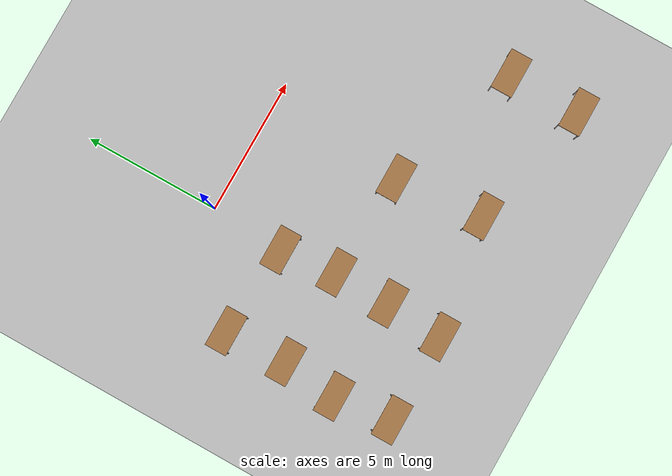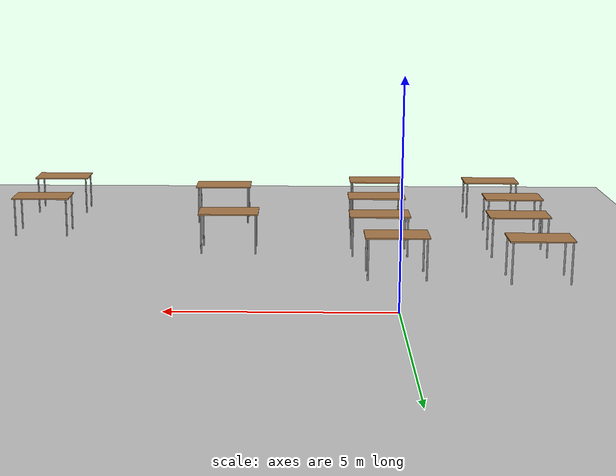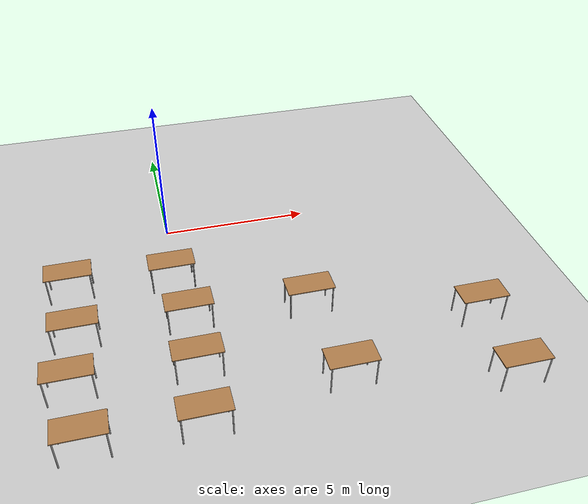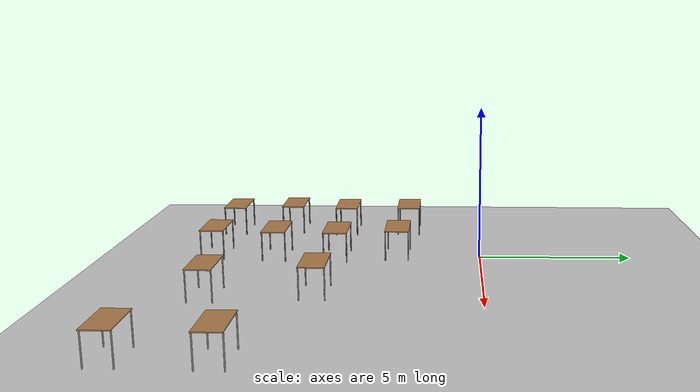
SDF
<sdf version="1.6">
 <world name="default">
  <model name="ground_plane">
   <static>1</static>
   <link name="link">
    <collision name="collision">
     <geometry><plane><normal>0 0 1</normal><size>100 100</size></plane></geometry>
     <surface>
      <contact><collide_bitmask>65535</collide_bitmask></contact>
      <friction><ode><mu>100</mu><mu2>50</mu2></ode></friction>
     </surface>
    </collision>
    <visual name="visual">
     <cast_shadows>0</cast_shadows>
     <geometry><plane><normal>0 0 1</normal><size>100 100</size></plane></geometry>
     <material>
      <script><uri>file://media/materials/scripts/gazebo.material</uri><name>Gazebo/Grey</name></script>
     </material>
    </visual>
   </link>
  </model>
  <model name="table">
   <static>1</static>
   <link name="link">
    <collision name="surface">
     <pose>0 0 1 0 -0 0</pose>
     <geometry><box><size>1.5 0.8 0.03</size></box></geometry>
     <surface><friction><ode><mu>0.6</mu><mu2>0.6</mu2></ode></friction></surface>
    </collision>
    <visual name="visual1">
     <pose>0 0 1 0 -0 0</pose>
     <geometry><box><size>1.5 0.8 0.03</size></box></geometry>
     <material>
      <script><uri>file://media/materials/scripts/gazebo.material</uri><name>Gazebo/Wood</name></script>
     </material>
    </visual>
    <collision name="front_left_leg">
     <pose>0.68 0.38 0.5 0 -0 0</pose>
     <geometry><cylinder><radius>0.02</radius><length>1</length></cylinder></geometry>
    </collision>
    <visual name="front_left_leg">
     <pose>0.68 0.38 0.5 0 -0 0</pose>
     <geometry><cylinder><radius>0.02</radius><length>1</length></cylinder></geometry>
     <material>
      <script><uri>file://media/materials/scripts/gazebo.material</uri><name>Gazebo/Grey</name></script>
     </material>
    </visual>
    <collision name="front_right_leg">
     <pose>0.68 -0.38 0.5 0 -0 0</pose>
     <geometry><cylinder><radius>0.02</radius><length>1</length></cylinder></geometry>
    </collision>
    <visual name="front_right_leg">
     <pose>0.68 -0.38 0.5 0 -0 0</pose>
     <geometry><cylinder><radius>0.02</radius><length>1</length></cylinder></geometry>
     <material>
      <script><uri>file://media/materials/scripts/gazebo.material</uri><name>Gazebo/Grey</name></script>
     </material>
    </visual>
    <collision name="back_right_leg">
     <pose>-0.68 -0.38 0.5 0 -0 0</pose>
     <geometry><cylinder><radius>0.02</radius><length>1</length></cylinder></geometry>
    </collision>
    <visual name="back_right_leg">
     <pose>-0.68 -0.38 0.5 0 -0 0</pose>
     <geometry><cylinder><radius>0.02</radius><length>1</length></cylinder></geometry>
     <material>
      <script><uri>file://media/materials/scripts/gazebo.material</uri><name>Gazebo/Grey</name></script>
     </material>
    </visual>
    <collision name="back_left_leg">
     <pose>-0.68 0.38 0.5 0 -0 0</pose>
     <geometry><cylinder><radius>0.02</radius><length>1</length></cylinder></geometry>
    </collision>
    <visual name="back_left_leg">
     <pose>-0.68 0.38 0.5 0 -0 0</pose>
     <geometry><cylinder><radius>0.02</radius><length>1</length></cylinder></geometry>
     <material>
      <script><uri>file://media/materials/scripts/gazebo.material</uri><name>Gazebo/Grey</name></script>
     </material>
    </visual>
   </link>
   <pose>4.21353 -8.15527 0 0 -0 0</pose>
  </model>
  <model name="table_0">
   <static>1</static>
   <link name="link">
    <collision name="surface">
     <pose>0 0 1 0 -0 0</pose>
     <geometry><box><size>1.5 0.8 0.03</size></box></geometry>
     <surface><friction><ode><mu>0.6</mu><mu2>0.6</mu2></ode></friction></surface>
    </collision>
    <visual name="visual1">
     <pose>0 0 1 0 -0 0</pose>
     <geometry><box><size>1.5 0.8 0.03</size></box></geometry>
     <material>
      <script><uri>file://media/materials/scripts/gazebo.material</uri><name>Gazebo/Wood</name></script>
     </material>
    </visual>
    <collision name="front_left_leg">
     <pose>0.68 0.38 0.5 0 -0 0</pose>
     <geometry><cylinder><radius>0.02</radius><length>1</length></cylinder></geometry>
    </collision>
    <visual name="front_left_leg">
     <pose>0.68 0.38 0.5 0 -0 0</pose>
     <geometry><cylinder><radius>0.02</radius><length>1</length></cylinder></geometry>
     <material>
      <script><uri>file://media/materials/scripts/gazebo.material</uri><name>Gazebo/Grey</name></script>
     </material>
    </visual>
    <collision name="front_right_leg">
     <pose>0.68 -0.38 0.5 0 -0 0</pose>
     <geometry><cylinder><radius>0.02</radius><length>1</length></cylinder></geometry>
    </collision>
    <visual name="front_right_leg">
     <pose>0.68 -0.38 0.5 0 -0 0</pose>
     <geometry><cylinder><radius>0.02</radius><length>1</length></cylinder></geometry>
     <material>
      <script><uri>file://media/materials/scripts/gazebo.material</uri><name>Gazebo/Grey</name></script>
     </material>
    </visual>
    <collision name="back_right_leg">
     <pose>-0.68 -0.38 0.5 0 -0 0</pose>
     <geometry><cylinder><radius>0.02</radius><length>1</length></cylinder></geometry>
    </collision>
    <visual name="back_right_leg">
     <pose>-0.68 -0.38 0.5 0 -0 0</pose>
     <geometry><cylinder><radius>0.02</radius><length>1</length></cylinder></geometry>
     <material>
      <script><uri>file://media/materials/scripts/gazebo.material</uri><name>Gazebo/Grey</name></script>
     </material>
    </visual>
    <collision name="back_left_leg">
     <pose>-0.68 0.38 0.5 0 -0 0</pose>
     <geometry><cylinder><radius>0.02</radius><length>1</length></cylinder></geometry>
    </collision>
    <visual name="back_left_leg">
     <pose>-0.68 0.38 0.5 0 -0 0</pose>
     <geometry><cylinder><radius>0.02</radius><length>1</length></cylinder></geometry>
     <material>
      <script><uri>file://media/materials/scripts/gazebo.material</uri><name>Gazebo/Grey</name></script>
     </material>
    </visual>
   </link>
   <pose>8.95701 -6.62729 0 0 -0 0</pose>
  </model>
  <model name="table_1">
   <static>1</static>
   <link name="link">
    <collision name="surface">
     <pose>0 0 1 0 -0 0</pose>
     <geometry><box><size>1.5 0.8 0.03</size></box></geometry>
     <surface><friction><ode><mu>0.6</mu><mu2>0.6</mu2></ode></friction></surface>
    </collision>
    <visual name="visual1">
     <pose>0 0 1 0 -0 0</pose>
     <geometry><box><size>1.5 0.8 0.03</size></box></geometry>
     <material>
      <script><uri>file://media/materials/scripts/gazebo.material</uri><name>Gazebo/Wood</name></script>
     </material>
    </visual>
    <collision name="front_left_leg">
     <pose>0.68 0.38 0.5 0 -0 0</pose>
     <geometry><cylinder><radius>0.02</radius><length>1</length></cylinder></geometry>
    </collision>
    <visual name="front_left_leg">
     <pose>0.68 0.38 0.5 0 -0 0</pose>
     <geometry><cylinder><radius>0.02</radius><length>1</length></cylinder></geometry>
     <material>
      <script><uri>file://media/materials/scripts/gazebo.material</uri><name>Gazebo/Grey</name></script>
     </material>
    </visual>
    <collision name="front_right_leg">
     <pose>0.68 -0.38 0.5 0 -0 0</pose>
     <geometry><cylinder><radius>0.02</radius><length>1</length></cylinder></geometry>
    </collision>
    <visual name="front_right_leg">
     <pose>0.68 -0.38 0.5 0 -0 0</pose>
     <geometry><cylinder><radius>0.02</radius><length>1</length></cylinder></geometry>
     <material>
      <script><uri>file://media/materials/scripts/gazebo.material</uri><name>Gazebo/Grey</name></script>
     </material>
    </visual>
    <collision name="back_right_leg">
     <pose>-0.68 -0.38 0.5 0 -0 0</pose>
     <geometry><cylinder><radius>0.02</radius><length>1</length></cylinder></geometry>
    </collision>
    <visual name="back_right_leg">
     <pose>-0.68 -0.38 0.5 0 -0 0</pose>
     <geometry><cylinder><radius>0.02</radius><length>1</length></cylinder></geometry>
     <material>
      <script><uri>file://media/materials/scripts/gazebo.material</uri><name>Gazebo/Grey</name></script>
     </material>
    </visual>
    <collision name="back_left_leg">
     <pose>-0.68 0.38 0.5 0 -0 0</pose>
     <geometry><cylinder><radius>0.02</radius><length>1</length></cylinder></geometry>
    </collision>
    <visual name="back_left_leg">
     <pose>-0.68 0.38 0.5 0 -0 0</pose>
     <geometry><cylinder><radius>0.02</radius><length>1</length></cylinder></geometry>
     <material>
      <script><uri>file://media/materials/scripts/gazebo.material</uri><name>Gazebo/Grey</name></script>
     </material>
    </visual>
   </link>
   <pose>8.91556 -9.27828 0 0 -0 0</pose>
  </model>
  <model name="table_2">
   <static>1</static>
   <link name="link">
    <collision name="surface">
     <pose>0 0 1 0 -0 0</pose>
     <geometry><box><size>1.5 0.8 0.03</size></box></geometry>
     <surface><friction><ode><mu>0.6</mu><mu2>0.6</mu2></ode></friction></surface>
    </collision>
    <visual name="visual1">
     <pose>0 0 1 0 -0 0</pose>
     <geometry><box><size>1.5 0.8 0.03</size></box></geometry>
     <material>
      <script><uri>file://media/materials/scripts/gazebo.material</uri><name>Gazebo/Wood</name></script>
     </material>
    </visual>
    <collision name="front_left_leg">
     <pose>0.68 0.38 0.5 0 -0 0</pose>
     <geometry><cylinder><radius>0.02</radius><length>1</length></cylinder></geometry>
    </collision>
    <visual name="front_left_leg">
     <pose>0.68 0.38 0.5 0 -0 0</pose>
     <geometry><cylinder><radius>0.02</radius><length>1</length></cylinder></geometry>
     <material>
      <script><uri>file://media/materials/scripts/gazebo.material</uri><name>Gazebo/Grey</name></script>
     </material>
    </visual>
    <collision name="front_right_leg">
     <pose>0.68 -0.38 0.5 0 -0 0</pose>
     <geometry><cylinder><radius>0.02</radius><length>1</length></cylinder></geometry>
    </collision>
    <visual name="front_right_leg">
     <pose>0.68 -0.38 0.5 0 -0 0</pose>
     <geometry><cylinder><radius>0.02</radius><length>1</length></cylinder></geometry>
     <material>
      <script><uri>file://media/materials/scripts/gazebo.material</uri><name>Gazebo/Grey</name></script>
     </material>
    </visual>
    <collision name="back_right_leg">
     <pose>-0.68 -0.38 0.5 0 -0 0</pose>
     <geometry><cylinder><radius>0.02</radius><length>1</length></cylinder></geometry>
    </collision>
    <visual name="back_right_leg">
     <pose>-0.68 -0.38 0.5 0 -0 0</pose>
     <geometry><cylinder><radius>0.02</radius><length>1</length></cylinder></geometry>
     <material>
      <script><uri>file://media/materials/scripts/gazebo.material</uri><name>Gazebo/Grey</name></script>
     </material>
    </visual>
    <collision name="back_left_leg">
     <pose>-0.68 0.38 0.5 0 -0 0</pose>
     <geometry><cylinder><radius>0.02</radius><length>1</length></cylinder></geometry>
    </collision>
    <visual name="back_left_leg">
     <pose>-0.68 0.38 0.5 0 -0 0</pose>
     <geometry><cylinder><radius>0.02</radius><length>1</length></cylinder></geometry>
     <material>
      <script><uri>file://media/materials/scripts/gazebo.material</uri><name>Gazebo/Grey</name></script>
     </material>
    </visual>
   </link>
   <pose>-0.06769 -8.858 0 0 -0 0</pose>
  </model>
  <model name="table_3">
   <static>1</static>
   <link name="link">
    <collision name="surface">
     <pose>0 0 1 0 -0 0</pose>
     <geometry><box><size>1.5 0.8 0.03</size></box></geometry>
     <surface><friction><ode><mu>0.6</mu><mu2>0.6</mu2></ode></friction></surface>
    </collision>
    <visual name="visual1">
     <pose>0 0 1 0 -0 0</pose>
     <geometry><box><size>1.5 0.8 0.03</size></box></geometry>
     <material>
      <script><uri>file://media/materials/scripts/gazebo.material</uri><name>Gazebo/Wood</name></script>
     </material>
    </visual>
    <collision name="front_left_leg">
     <pose>0.68 0.38 0.5 0 -0 0</pose>
     <geometry><cylinder><radius>0.02</radius><length>1</length></cylinder></geometry>
    </collision>
    <visual name="front_left_leg">
     <pose>0.68 0.38 0.5 0 -0 0</pose>
     <geometry><cylinder><radius>0.02</radius><length>1</length></cylinder></geometry>
     <material>
      <script><uri>file://media/materials/scripts/gazebo.material</uri><name>Gazebo/Grey</name></script>
     </material>
    </visual>
    <collision name="front_right_leg">
     <pose>0.68 -0.38 0.5 0 -0 0</pose>
     <geometry><cylinder><radius>0.02</radius><length>1</length></cylinder></geometry>
    </collision>
    <visual name="front_right_leg">
     <pose>0.68 -0.38 0.5 0 -0 0</pose>
     <geometry><cylinder><radius>0.02</radius><length>1</length></cylinder></geometry>
     <material>
      <script><uri>file://media/materials/scripts/gazebo.material</uri><name>Gazebo/Grey</name></script>
     </material>
    </visual>
    <collision name="back_right_leg">
     <pose>-0.68 -0.38 0.5 0 -0 0</pose>
     <geometry><cylinder><radius>0.02</radius><length>1</length></cylinder></geometry>
    </collision>
    <visual name="back_right_leg">
     <pose>-0.68 -0.38 0.5 0 -0 0</pose>
     <geometry><cylinder><radius>0.02</radius><length>1</length></cylinder></geometry>
     <material>
      <script><uri>file://media/materials/scripts/gazebo.material</uri><name>Gazebo/Grey</name></script>
     </material>
    </visual>
    <collision name="back_left_leg">
     <pose>-0.68 0.38 0.5 0 -0 0</pose>
     <geometry><cylinder><radius>0.02</radius><length>1</length></cylinder></geometry>
    </collision>
    <visual name="back_left_leg">
     <pose>-0.68 0.38 0.5 0 -0 0</pose>
     <geometry><cylinder><radius>0.02</radius><length>1</length></cylinder></geometry>
     <material>
      <script><uri>file://media/materials/scripts/gazebo.material</uri><name>Gazebo/Grey</name></script>
     </material>
    </visual>
   </link>
   <pose>-3.28325 -8.80632 0 0 -0 0</pose>
  </model>
  <model name="table_4">
   <static>1</static>
   <link name="link">
    <collision name="surface">
     <pose>0 0 1 0 -0 0</pose>
     <geometry><box><size>1.5 0.8 0.03</size></box></geometry>
     <surface><friction><ode><mu>0.6</mu><mu2>0.6</mu2></ode></friction></surface>
    </collision>
    <visual name="visual1">
     <pose>0 0 1 0 -0 0</pose>
     <geometry><box><size>1.5 0.8 0.03</size></box></geometry>
     <material>
      <script><uri>file://media/materials/scripts/gazebo.material</uri><name>Gazebo/Wood</name></script>
     </material>
    </visual>
    <collision name="front_left_leg">
     <pose>0.68 0.38 0.5 0 -0 0</pose>
     <geometry><cylinder><radius>0.02</radius><length>1</length></cylinder></geometry>
    </collision>
    <visual name="front_left_leg">
     <pose>0.68 0.38 0.5 0 -0 0</pose>
     <geometry><cylinder><radius>0.02</radius><length>1</length></cylinder></geometry>
     <material>
      <script><uri>file://media/materials/scripts/gazebo.material</uri><name>Gazebo/Grey</name></script>
     </material>
    </visual>
    <collision name="front_right_leg">
     <pose>0.68 -0.38 0.5 0 -0 0</pose>
     <geometry><cylinder><radius>0.02</radius><length>1</length></cylinder></geometry>
    </collision>
    <visual name="front_right_leg">
     <pose>0.68 -0.38 0.5 0 -0 0</pose>
     <geometry><cylinder><radius>0.02</radius><length>1</length></cylinder></geometry>
     <material>
      <script><uri>file://media/materials/scripts/gazebo.material</uri><name>Gazebo/Grey</name></script>
     </material>
    </visual>
    <collision name="back_right_leg">
     <pose>-0.68 -0.38 0.5 0 -0 0</pose>
     <geometry><cylinder><radius>0.02</radius><length>1</length></cylinder></geometry>
    </collision>
    <visual name="back_right_leg">
     <pose>-0.68 -0.38 0.5 0 -0 0</pose>
     <geometry><cylinder><radius>0.02</radius><length>1</length></cylinder></geometry>
     <material>
      <script><uri>file://media/materials/scripts/gazebo.material</uri><name>Gazebo/Grey</name></script>
     </material>
    </visual>
    <collision name="back_left_leg">
     <pose>-0.68 0.38 0.5 0 -0 0</pose>
     <geometry><cylinder><radius>0.02</radius><length>1</length></cylinder></geometry>
    </collision>
    <visual name="back_left_leg">
     <pose>-0.68 0.38 0.5 0 -0 0</pose>
     <geometry><cylinder><radius>0.02</radius><length>1</length></cylinder></geometry>
     <material>
      <script><uri>file://media/materials/scripts/gazebo.material</uri><name>Gazebo/Grey</name></script>
     </material>
    </visual>
   </link>
   <pose>-3.54698 -6.73066 0 0 -0 0</pose>
  </model>
  <model name="table_5">
   <static>1</static>
   <link name="link">
    <collision name="surface">
     <pose>0 0 1 0 -0 0</pose>
     <geometry><box><size>1.5 0.8 0.03</size></box></geometry>
     <surface><friction><ode><mu>0.6</mu><mu2>0.6</mu2></ode></friction></surface>
    </collision>
    <visual name="visual1">
     <pose>0 0 1 0 -0 0</pose>
     <geometry><box><size>1.5 0.8 0.03</size></box></geometry>
     <material>
      <script><uri>file://media/materials/scripts/gazebo.material</uri><name>Gazebo/Wood</name></script>
     </material>
    </visual>
    <collision name="front_left_leg">
     <pose>0.68 0.38 0.5 0 -0 0</pose>
     <geometry><cylinder><radius>0.02</radius><length>1</length></cylinder></geometry>
    </collision>
    <visual name="front_left_leg">
     <pose>0.68 0.38 0.5 0 -0 0</pose>
     <geometry><cylinder><radius>0.02</radius><length>1</length></cylinder></geometry>
     <material>
      <script><uri>file://media/materials/scripts/gazebo.material</uri><name>Gazebo/Grey</name></script>
     </material>
    </visual>
    <collision name="front_right_leg">
     <pose>0.68 -0.38 0.5 0 -0 0</pose>
     <geometry><cylinder><radius>0.02</radius><length>1</length></cylinder></geometry>
    </collision>
    <visual name="front_right_leg">
     <pose>0.68 -0.38 0.5 0 -0 0</pose>
     <geometry><cylinder><radius>0.02</radius><length>1</length></cylinder></geometry>
     <material>
      <script><uri>file://media/materials/scripts/gazebo.material</uri><name>Gazebo/Grey</name></script>
     </material>
    </visual>
    <collision name="back_right_leg">
     <pose>-0.68 -0.38 0.5 0 -0 0</pose>
     <geometry><cylinder><radius>0.02</radius><length>1</length></cylinder></geometry>
    </collision>
    <visual name="back_right_leg">
     <pose>-0.68 -0.38 0.5 0 -0 0</pose>
     <geometry><cylinder><radius>0.02</radius><length>1</length></cylinder></geometry>
     <material>
      <script><uri>file://media/materials/scripts/gazebo.material</uri><name>Gazebo/Grey</name></script>
     </material>
    </visual>
    <collision name="back_left_leg">
     <pose>-0.68 0.38 0.5 0 -0 0</pose>
     <geometry><cylinder><radius>0.02</radius><length>1</length></cylinder></geometry>
    </collision>
    <visual name="back_left_leg">
     <pose>-0.68 0.38 0.5 0 -0 0</pose>
     <geometry><cylinder><radius>0.02</radius><length>1</length></cylinder></geometry>
     <material>
      <script><uri>file://media/materials/scripts/gazebo.material</uri><name>Gazebo/Grey</name></script>
     </material>
    </visual>
   </link>
   <pose>3.88641 -4.96979 0 0 -0 0</pose>
  </model>
  <model name="table_7">
   <static>1</static>
   <link name="link">
    <collision name="surface">
     <pose>0 0 1 0 -0 0</pose>
     <geometry><box><size>1.5 0.8 0.03</size></box></geometry>
     <surface><friction><ode><mu>0.6</mu><mu2>0.6</mu2></ode></friction></surface>
    </collision>
    <visual name="visual1">
     <pose>0 0 1 0 -0 0</pose>
     <geometry><box><size>1.5 0.8 0.03</size></box></geometry>
     <material>
      <script><uri>file://media/materials/scripts/gazebo.material</uri><name>Gazebo/Wood</name></script>
     </material>
    </visual>
    <collision name="front_left_leg">
     <pose>0.68 0.38 0.5 0 -0 0</pose>
     <geometry><cylinder><radius>0.02</radius><length>1</length></cylinder></geometry>
    </collision>
    <visual name="front_left_leg">
     <pose>0.68 0.38 0.5 0 -0 0</pose>
     <geometry><cylinder><radius>0.02</radius><length>1</length></cylinder></geometry>
     <material>
      <script><uri>file://media/materials/scripts/gazebo.material</uri><name>Gazebo/Grey</name></script>
     </material>
    </visual>
    <collision name="front_right_leg">
     <pose>0.68 -0.38 0.5 0 -0 0</pose>
     <geometry><cylinder><radius>0.02</radius><length>1</length></cylinder></geometry>
    </collision>
    <visual name="front_right_leg">
     <pose>0.68 -0.38 0.5 0 -0 0</pose>
     <geometry><cylinder><radius>0.02</radius><length>1</length></cylinder></geometry>
     <material>
      <script><uri>file://media/materials/scripts/gazebo.material</uri><name>Gazebo/Grey</name></script>
     </material>
    </visual>
    <collision name="back_right_leg">
     <pose>-0.68 -0.38 0.5 0 -0 0</pose>
     <geometry><cylinder><radius>0.02</radius><length>1</length></cylinder></geometry>
    </collision>
    <visual name="back_right_leg">
     <pose>-0.68 -0.38 0.5 0 -0 0</pose>
     <geometry><cylinder><radius>0.02</radius><length>1</length></cylinder></geometry>
     <material>
      <script><uri>file://media/materials/scripts/gazebo.material</uri><name>Gazebo/Grey</name></script>
     </material>
    </visual>
    <collision name="back_left_leg">
     <pose>-0.68 0.38 0.5 0 -0 0</pose>
     <geometry><cylinder><radius>0.02</radius><length>1</length></cylinder></geometry>
    </collision>
    <visual name="back_left_leg">
     <pose>-0.68 0.38 0.5 0 -0 0</pose>
     <geometry><cylinder><radius>0.02</radius><length>1</length></cylinder></geometry>
     <material>
      <script><uri>file://media/materials/scripts/gazebo.material</uri><name>Gazebo/Grey</name></script>
     </material>
    </visual>
   </link>
   <pose>-3.3355 -4.74525 0 0 -0 0</pose>
  </model>
  <model name="table_8">
   <static>1</static>
   <link name="link">
    <collision name="surface">
     <pose>0 0 1 0 -0 0</pose>
     <geometry><box><size>1.5 0.8 0.03</size></box></geometry>
     <surface><friction><ode><mu>0.6</mu><mu2>0.6</mu2></ode></friction></surface>
    </collision>
    <visual name="visual1">
     <pose>0 0 1 0 -0 0</pose>
     <geometry><box><size>1.5 0.8 0.03</size></box></geometry>
     <material>
      <script><uri>file://media/materials/scripts/gazebo.material</uri><name>Gazebo/Wood</name></script>
     </material>
    </visual>
    <collision name="front_left_leg">
     <pose>0.68 0.38 0.5 0 -0 0</pose>
     <geometry><cylinder><radius>0.02</radius><length>1</length></cylinder></geometry>
    </collision>
    <visual name="front_left_leg">
     <pose>0.68 0.38 0.5 0 -0 0</pose>
     <geometry><cylinder><radius>0.02</radius><length>1</length></cylinder></geometry>
     <material>
      <script><uri>file://media/materials/scripts/gazebo.material</uri><name>Gazebo/Grey</name></script>
     </material>
    </visual>
    <collision name="front_right_leg">
     <pose>0.68 -0.38 0.5 0 -0 0</pose>
     <geometry><cylinder><radius>0.02</radius><length>1</length></cylinder></geometry>
    </collision>
    <visual name="front_right_leg">
     <pose>0.68 -0.38 0.5 0 -0 0</pose>
     <geometry><cylinder><radius>0.02</radius><length>1</length></cylinder></geometry>
     <material>
      <script><uri>file://media/materials/scripts/gazebo.material</uri><name>Gazebo/Grey</name></script>
     </material>
    </visual>
    <collision name="back_right_leg">
     <pose>-0.68 -0.38 0.5 0 -0 0</pose>
     <geometry><cylinder><radius>0.02</radius><length>1</length></cylinder></geometry>
    </collision>
    <visual name="back_right_leg">
     <pose>-0.68 -0.38 0.5 0 -0 0</pose>
     <geometry><cylinder><radius>0.02</radius><length>1</length></cylinder></geometry>
     <material>
      <script><uri>file://media/materials/scripts/gazebo.material</uri><name>Gazebo/Grey</name></script>
     </material>
    </visual>
    <collision name="back_left_leg">
     <pose>-0.68 0.38 0.5 0 -0 0</pose>
     <geometry><cylinder><radius>0.02</radius><length>1</length></cylinder></geometry>
    </collision>
    <visual name="back_left_leg">
     <pose>-0.68 0.38 0.5 0 -0 0</pose>
     <geometry><cylinder><radius>0.02</radius><length>1</length></cylinder></geometry>
     <material>
      <script><uri>file://media/materials/scripts/gazebo.material</uri><name>Gazebo/Grey</name></script>
     </material>
    </visual>
   </link>
   <pose>0.058687 -6.79225 0 0 -0 0</pose>
  </model>
  <model name="table_9">
   <static>1</static>
   <link name="link">
    <collision name="surface">
     <pose>0 0 1 0 -0 0</pose>
     <geometry><box><size>1.5 0.8 0.03</size></box></geometry>
     <surface><friction><ode><mu>0.6</mu><mu2>0.6</mu2></ode></friction></surface>
    </collision>
    <visual name="visual1">
     <pose>0 0 1 0 -0 0</pose>
     <geometry><box><size>1.5 0.8 0.03</size></box></geometry>
     <material>
      <script><uri>file://media/materials/scripts/gazebo.material</uri><name>Gazebo/Wood</name></script>
     </material>
    </visual>
    <collision name="front_left_leg">
     <pose>0.68 0.38 0.5 0 -0 0</pose>
     <geometry><cylinder><radius>0.02</radius><length>1</length></cylinder></geometry>
    </collision>
    <visual name="front_left_leg">
     <pose>0.68 0.38 0.5 0 -0 0</pose>
     <geometry><cylinder><radius>0.02</radius><length>1</length></cylinder></geometry>
     <material>
      <script><uri>file://media/materials/scripts/gazebo.material</uri><name>Gazebo/Grey</name></script>
     </material>
    </visual>
    <collision name="front_right_leg">
     <pose>0.68 -0.38 0.5 0 -0 0</pose>
     <geometry><cylinder><radius>0.02</radius><length>1</length></cylinder></geometry>
    </collision>
    <visual name="front_right_leg">
     <pose>0.68 -0.38 0.5 0 -0 0</pose>
     <geometry><cylinder><radius>0.02</radius><length>1</length></cylinder></geometry>
     <material>
      <script><uri>file://media/materials/scripts/gazebo.material</uri><name>Gazebo/Grey</name></script>
     </material>
    </visual>
    <collision name="back_right_leg">
     <pose>-0.68 -0.38 0.5 0 -0 0</pose>
     <geometry><cylinder><radius>0.02</radius><length>1</length></cylinder></geometry>
    </collision>
    <visual name="back_right_leg">
     <pose>-0.68 -0.38 0.5 0 -0 0</pose>
     <geometry><cylinder><radius>0.02</radius><length>1</length></cylinder></geometry>
     <material>
      <script><uri>file://media/materials/scripts/gazebo.material</uri><name>Gazebo/Grey</name></script>
     </material>
    </visual>
    <collision name="back_left_leg">
     <pose>-0.68 0.38 0.5 0 -0 0</pose>
     <geometry><cylinder><radius>0.02</radius><length>1</length></cylinder></geometry>
    </collision>
    <visual name="back_left_leg">
     <pose>-0.68 0.38 0.5 0 -0 0</pose>
     <geometry><cylinder><radius>0.02</radius><length>1</length></cylinder></geometry>
     <material>
      <script><uri>file://media/materials/scripts/gazebo.material</uri><name>Gazebo/Grey</name></script>
     </material>
    </visual>
   </link>
   <pose>0.111541 -4.75806 0 0 -0 0</pose>
  </model>
  <model name="table_10">
   <static>1</static>
   <link name="link">
    <collision name="surface">
     <pose>0 0 1 0 -0 0</pose>
     <geometry><box><size>1.5 0.8 0.03</size></box></geometry>
     <surface><friction><ode><mu>0.6</mu><mu2>0.6</mu2></ode></friction></surface>
    </collision>
    <visual name="visual1">
     <pose>0 0 1 0 -0 0</pose>
     <geometry><box><size>1.5 0.8 0.03</size></box></geometry>
     <material>
      <script><uri>file://media/materials/scripts/gazebo.material</uri><name>Gazebo/Wood</name></script>
     </material>
    </visual>
    <collision name="front_left_leg">
     <pose>0.68 0.38 0.5 0 -0 0</pose>
     <geometry><cylinder><radius>0.02</radius><length>1</length></cylinder></geometry>
    </collision>
    <visual name="front_left_leg">
     <pose>0.68 0.38 0.5 0 -0 0</pose>
     <geometry><cylinder><radius>0.02</radius><length>1</length></cylinder></geometry>
     <material>
      <script><uri>file://media/materials/scripts/gazebo.material</uri><name>Gazebo/Grey</name></script>
     </material>
    </visual>
    <collision name="front_right_leg">
     <pose>0.68 -0.38 0.5 0 -0 0</pose>
     <geometry><cylinder><radius>0.02</radius><length>1</length></cylinder></geometry>
    </collision>
    <visual name="front_right_leg">
     <pose>0.68 -0.38 0.5 0 -0 0</pose>
     <geometry><cylinder><radius>0.02</radius><length>1</length></cylinder></geometry>
     <material>
      <script><uri>file://media/materials/scripts/gazebo.material</uri><name>Gazebo/Grey</name></script>
     </material>
    </visual>
    <collision name="back_right_leg">
     <pose>-0.68 -0.38 0.5 0 -0 0</pose>
     <geometry><cylinder><radius>0.02</radius><length>1</length></cylinder></geometry>
    </collision>
    <visual name="back_right_leg">
     <pose>-0.68 -0.38 0.5 0 -0 0</pose>
     <geometry><cylinder><radius>0.02</radius><length>1</length></cylinder></geometry>
     <material>
      <script><uri>file://media/materials/scripts/gazebo.material</uri><name>Gazebo/Grey</name></script>
     </material>
    </visual>
    <collision name="back_left_leg">
     <pose>-0.68 0.38 0.5 0 -0 0</pose>
     <geometry><cylinder><radius>0.02</radius><length>1</length></cylinder></geometry>
    </collision>
    <visual name="back_left_leg">
     <pose>-0.68 0.38 0.5 0 -0 0</pose>
     <geometry><cylinder><radius>0.02</radius><length>1</length></cylinder></geometry>
     <material>
      <script><uri>file://media/materials/scripts/gazebo.material</uri><name>Gazebo/Grey</name></script>
     </material>
    </visual>
   </link>
   <pose>-3.42054 -2.49421 0 0 -0 0</pose>
  </model>
  <model name="table_11">
   <static>1</static>
   <link name="link">
    <collision name="surface">
     <pose>0 0 1 0 -0 0</pose>
     <geometry><box><size>1.5 0.8 0.03</size></box></geometry>
     <surface><friction><ode><mu>0.6</mu><mu2>0.6</mu2></ode></friction></surface>
    </collision>
    <visual name="visual1">
     <pose>0 0 1 0 -0 0</pose>
     <geometry><box><size>1.5 0.8 0.03</size></box></geometry>
     <material>
      <script><uri>file://media/materials/scripts/gazebo.material</uri><name>Gazebo/Wood</name></script>
     </material>
    </visual>
    <collision name="front_left_leg">
     <pose>0.68 0.38 0.5 0 -0 0</pose>
     <geometry><cylinder><radius>0.02</radius><length>1</length></cylinder></geometry>
    </collision>
    <visual name="front_left_leg">
     <pose>0.68 0.38 0.5 0 -0 0</pose>
     <geometry><cylinder><radius>0.02</radius><length>1</length></cylinder></geometry>
     <material>
      <script><uri>file://media/materials/scripts/gazebo.material</uri><name>Gazebo/Grey</name></script>
     </material>
    </visual>
    <collision name="front_right_leg">
     <pose>0.68 -0.38 0.5 0 -0 0</pose>
     <geometry><cylinder><radius>0.02</radius><length>1</length></cylinder></geometry>
    </collision>
    <visual name="front_right_leg">
     <pose>0.68 -0.38 0.5 0 -0 0</pose>
     <geometry><cylinder><radius>0.02</radius><length>1</length></cylinder></geometry>
     <material>
      <script><uri>file://media/materials/scripts/gazebo.material</uri><name>Gazebo/Grey</name></script>
     </material>
    </visual>
    <collision name="back_right_leg">
     <pose>-0.68 -0.38 0.5 0 -0 0</pose>
     <geometry><cylinder><radius>0.02</radius><length>1</length></cylinder></geometry>
    </collision>
    <visual name="back_right_leg">
     <pose>-0.68 -0.38 0.5 0 -0 0</pose>
     <geometry><cylinder><radius>0.02</radius><length>1</length></cylinder></geometry>
     <material>
      <script><uri>file://media/materials/scripts/gazebo.material</uri><name>Gazebo/Grey</name></script>
     </material>
    </visual>
    <collision name="back_left_leg">
     <pose>-0.68 0.38 0.5 0 -0 0</pose>
     <geometry><cylinder><radius>0.02</radius><length>1</length></cylinder></geometry>
    </collision>
    <visual name="back_left_leg">
     <pose>-0.68 0.38 0.5 0 -0 0</pose>
     <geometry><cylinder><radius>0.02</radius><length>1</length></cylinder></geometry>
     <material>
      <script><uri>file://media/materials/scripts/gazebo.material</uri><name>Gazebo/Grey</name></script>
     </material>
    </visual>
   </link>
   <pose>-0.152835 -2.73963 0 0 -0 0</pose>
  </model>
 </world>
</sdf>
